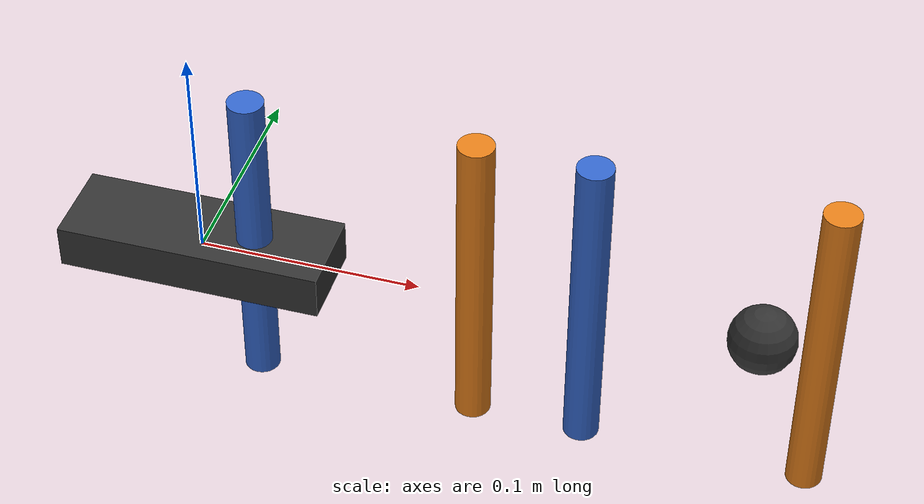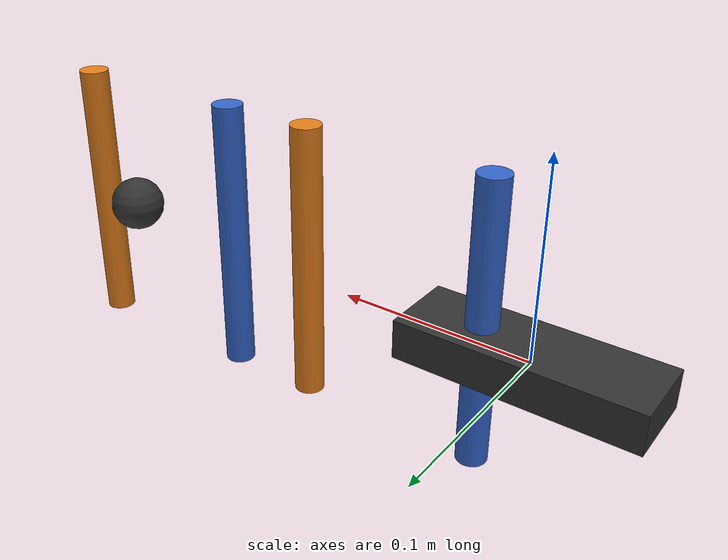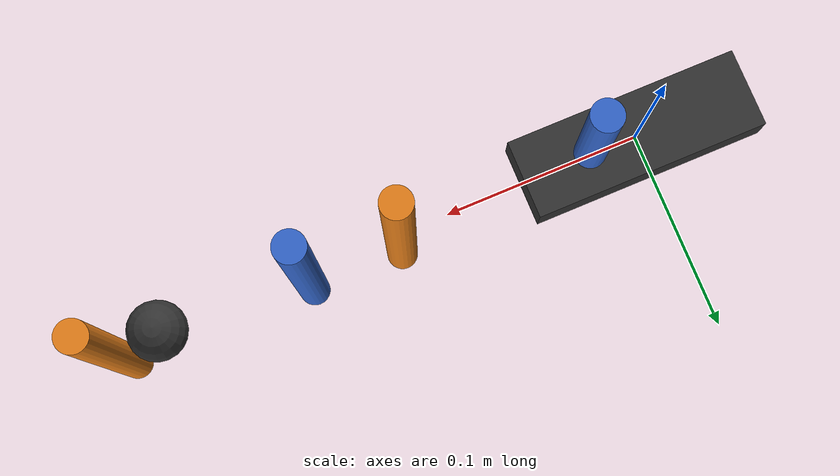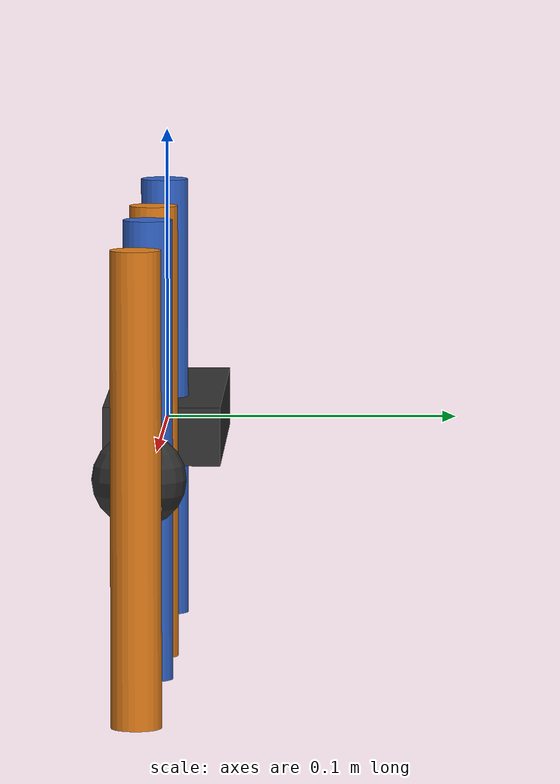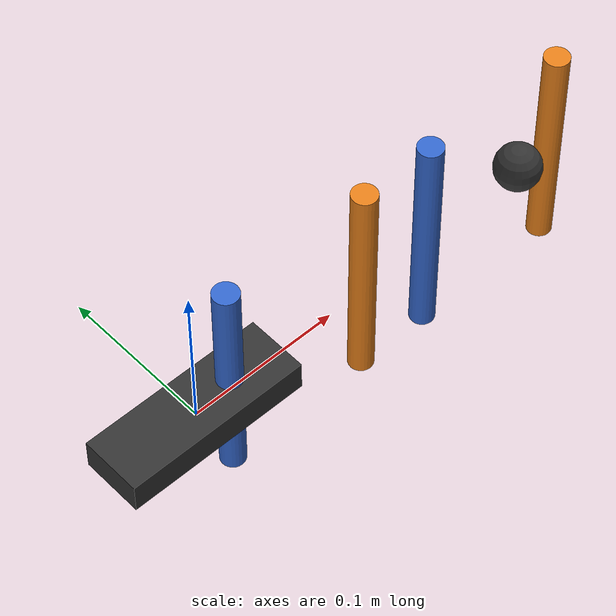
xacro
<?xml version="1.0"?>
<robot xmlns:xacro="http://www.ros.org/wiki/xacro" name="sharmech">

  <!-- ===== 機構パラメータ ===== -->
  <xacro:property name="l1"          value="0.15"/>  <!-- 第1リンク長 [m] -->
  <xacro:property name="l2"          value="0.15"/>  <!-- 第2リンク長 [m] -->
  <xacro:property name="base_width"  value="0.10"/>  <!-- モータ間距離 [m] -->
  <xacro:property name="link_radius" value="0.008"/> <!-- リンク表示用半径 -->

  <!-- ===== マテリアル ===== -->
  <material name="dark_gray">
    <color rgba="0.2 0.2 0.2 1.0"/>
  </material>
  <material name="blue">
    <color rgba="0.2 0.4 0.8 1.0"/>
  </material>
  <material name="orange">
    <color rgba="0.9 0.5 0.1 1.0"/>
  </material>

  <!-- ===== ベースリンク ===== -->
  <link name="base_link">
    <visual>
      <geometry>
        <box size="${base_width + 0.02} 0.04 0.02"/>
      </geometry>
      <material name="dark_gray"/>
    </visual>
    <collision>
      <geometry>
        <box size="${base_width + 0.02} 0.04 0.02"/>
      </geometry>
    </collision>
    <inertial>
      <mass value="0.5"/>
      <inertia ixx="0.001" iyy="0.001" izz="0.001" ixy="0" ixz="0" iyz="0"/>
    </inertial>
  </link>

  <!-- ===== モータ1 (左) ===== -->
  <joint name="joint1" type="revolute">
    <parent link="base_link"/>
    <child  link="upper_arm_left"/>
    <origin xyz="${-base_width/2} 0 0.01" rpy="0 0 0"/>
    <axis   xyz="0 0 1"/>
    <limit  lower="-1.5708" upper="3.1416" effort="10.0" velocity="3.1416"/>
    <dynamics damping="0.1"/>
  </joint>

  <link name="upper_arm_left">
    <visual>
      <origin xyz="${l1/2} 0 0"/>
      <geometry>
        <cylinder length="${l1}" radius="${link_radius}"/>
      </geometry>
      <material name="blue"/>
    </visual>
    <inertial>
      <mass value="0.05"/>
      <inertia ixx="0.0001" iyy="0.0001" izz="0.0001" ixy="0" ixz="0" iyz="0"/>
    </inertial>
  </link>

  <!-- 左肘 (受動関節: 実機では5節リンク拘束により決まる) -->
  <joint name="elbow_left" type="continuous">
    <parent link="upper_arm_left"/>
    <child  link="forearm_left"/>
    <origin xyz="${l1} 0 0" rpy="0 0 0"/>
    <axis   xyz="0 0 1"/>
  </joint>

  <link name="forearm_left">
    <visual>
      <origin xyz="${l2/2} 0 0"/>
      <geometry>
        <cylinder length="${l2}" radius="${link_radius}"/>
      </geometry>
      <material name="blue"/>
    </visual>
    <inertial>
      <mass value="0.05"/>
      <inertia ixx="0.0001" iyy="0.0001" izz="0.0001" ixy="0" ixz="0" iyz="0"/>
    </inertial>
  </link>

  <!-- ===== モータ2 (右) ===== -->
  <joint name="joint2" type="revolute">
    <parent link="base_link"/>
    <child  link="upper_arm_right"/>
    <origin xyz="${base_width/2} 0 0.01" rpy="0 0 0"/>
    <axis   xyz="0 0 1"/>
    <limit  lower="-3.1416" upper="1.5708" effort="10.0" velocity="3.1416"/>
    <dynamics damping="0.1"/>
  </joint>

  <link name="upper_arm_right">
    <visual>
      <origin xyz="${l1/2} 0 0"/>
      <geometry>
        <cylinder length="${l1}" radius="${link_radius}"/>
      </geometry>
      <material name="orange"/>
    </visual>
    <inertial>
      <mass value="0.05"/>
      <inertia ixx="0.0001" iyy="0.0001" izz="0.0001" ixy="0" ixz="0" iyz="0"/>
    </inertial>
  </link>

  <joint name="elbow_right" type="continuous">
    <parent link="upper_arm_right"/>
    <child  link="forearm_right"/>
    <origin xyz="${l1} 0 0" rpy="0 0 0"/>
    <axis   xyz="0 0 1"/>
  </joint>

  <link name="forearm_right">
    <visual>
      <origin xyz="${l2/2} 0 0"/>
      <geometry>
        <cylinder length="${l2}" radius="${link_radius}"/>
      </geometry>
      <material name="orange"/>
    </visual>
    <inertial>
      <mass value="0.05"/>
      <inertia ixx="0.0001" iyy="0.0001" izz="0.0001" ixy="0" ixz="0" iyz="0"/>
    </inertial>
  </link>

  <!-- ===== エンドエフェクタ ===== -->
  <!-- URDF は開ループツリー構造のため、5節リンクの閉ループ拘束は表現できない -->
  <!-- 実際のEE位置は kinematics_node が計算する -->
  <joint name="end_effector_joint" type="fixed">
    <parent link="forearm_left"/>
    <child  link="end_effector"/>
    <origin xyz="${l2} 0 0" rpy="0 0 0"/>
  </joint>

  <link name="end_effector">
    <visual>
      <geometry>
        <sphere radius="0.015"/>
      </geometry>
      <material name="dark_gray"/>
    </visual>
    <inertial>
      <mass value="0.02"/>
      <inertia ixx="0.00001" iyy="0.00001" izz="0.00001" ixy="0" ixz="0" iyz="0"/>
    </inertial>
  </link>

</robot>
